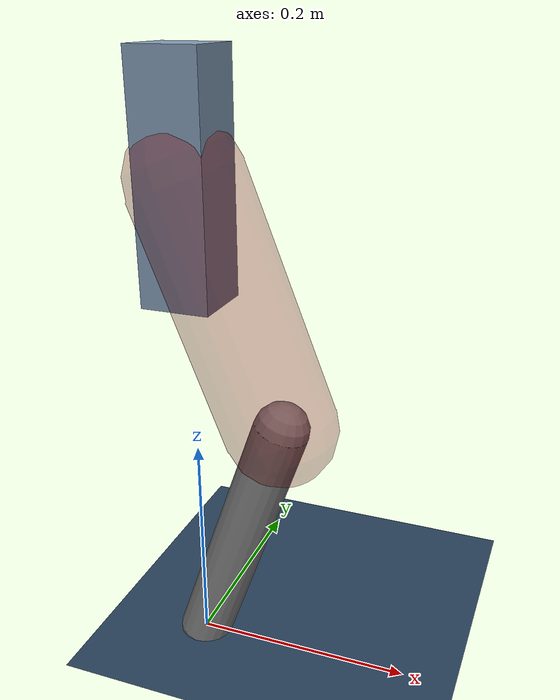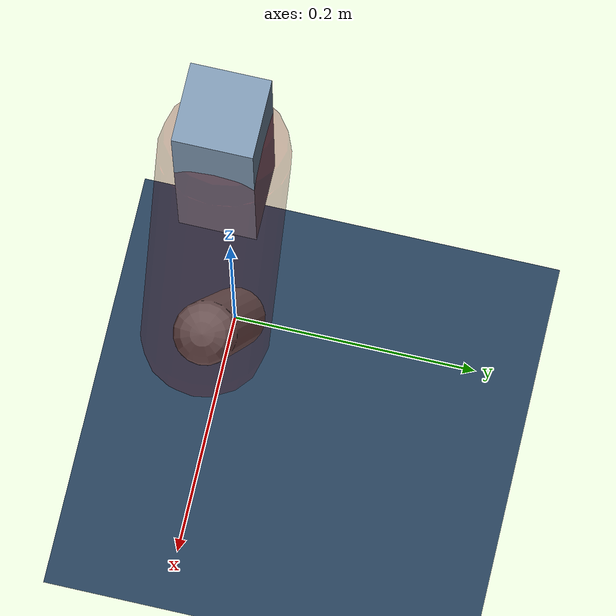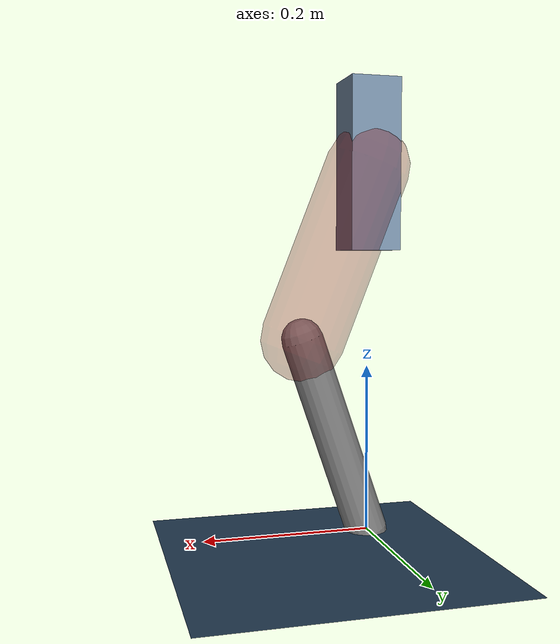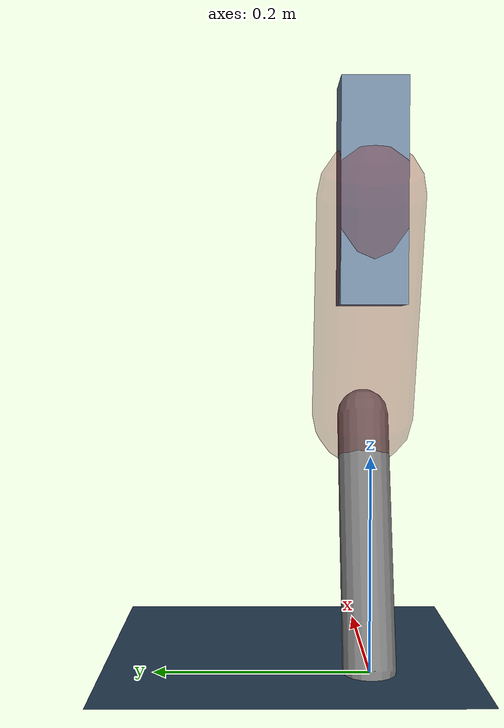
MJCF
<mujoco model="Hopper2D">
	<compiler inertiafromgeom="true" angle="radian" />
	<option timestep="0.001" integrator="implicit" cone="elliptic" solver="Newton" tolerance="1e-10" />

	<default>
		<geom contype="1" conaffinity="1" condim="3" friction="2 0.005 0.0001" solref="0.005 1" />
		<joint limited="true" damping="0.1" />
	</default>

	<asset>
		<texture name="skybox" type="skybox" builtin="gradient" rgb1=".4 .6 .8" rgb2="0 0 0" width="800" height="800" />
		<texture name="grid" type="2d" builtin="checker" rgb1=".1 .2 .3" rgb2=".2 .3 .4" width="300" height="300" mark="edge" markrgb=".2 .3 .4" />
		<material name="ground" texture="grid" texrepeat="1 1" texuniform="true" reflectance="0.1" />
		<material name="leg" rgba="0.5 0.6 0.7 1" />
	</asset>

	<worldbody>

		<geom name="floor" type="plane" size="5 5 0.25" material="ground" />

		<light directional="false" diffuse="0.8 0.8 0.8" specular="0.3 0.3 0.3" pos="0 0 2" dir="0 0 -1" />
		<light mode="targetbodycom" target="base" directional="false" diffuse="0.8 0.8 0.8" specular="0.3 0.3 0.3" pos="0 0 2" dir="0 0 -1" />

		<camera name="fixed" pos="0 -2 1" xyaxes="1 0 0 0 0 1" />
		<camera name="tracking" mode="trackcom" pos="0 -3 1" />

		<body name="root" pos="0 0 0.43908582165068744">
			<joint name="slide_x" type="slide" axis="1 0 0" range="-100 100" />
			<joint name="slide_z" type="slide" axis="0 0 1" range="0 10" />

			<body name="base" pos="0 0 0">
				<geom name="torso" type="box" size="0.03 0.03 0.1" mass="2.192" material="leg" />

				<body name="link1" pos="0 0 0" euler="0 1.1948465639053483 0">
					<joint type="hinge" axis="0 -1 0" pos="0 0 0" name="hinge1" limited="true" range="-3.14 3.14" stiffness="0" damping="0.1" />
					<geom name="thigh" type="capsule" fromto="0 0 0 0.22065157349131223 0 0" size="0.05" rgba="0.5 0 0 0.3" mass="0.7813289337282806" />

					<body name="link2" pos="0.22065157349131223 0 0" euler="0 0.7094511734066048 0">
						<joint type="hinge" axis="0 -1 0" pos="0 0 0" name="hinge2" limited="true" range="-3.14 3.14" stiffness="0" damping="0.1" />
						<geom name="shank" type="capsule" fromto="0 0 0 0.24748039154715396 0 0" size="0.025" mass="0.4404843132377232" />

					</body>
				</body>
			</body>
		</body>
	</worldbody>

	<actuator>
		<motor name="torque1" joint="hinge1" ctrlrange="-82.71208924175653 82.71208924175653" ctrllimited="true" gear="1" />
		<motor name="torque2" joint="hinge2" ctrlrange="-50.12856629733368 50.12856629733368" ctrllimited="true" gear="1" />
	</actuator>
</mujoco>
